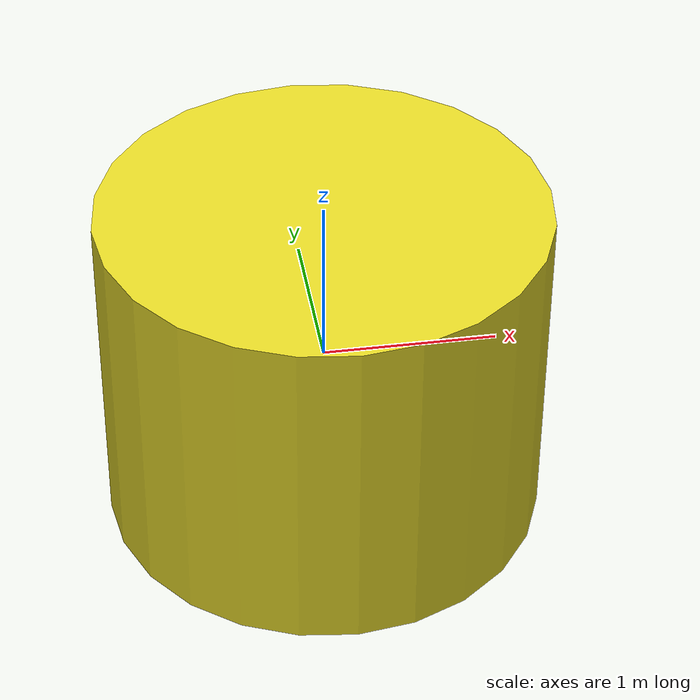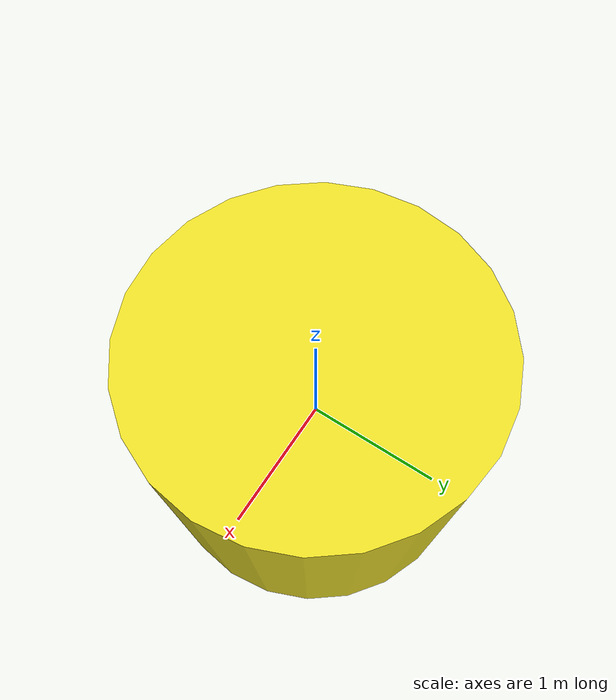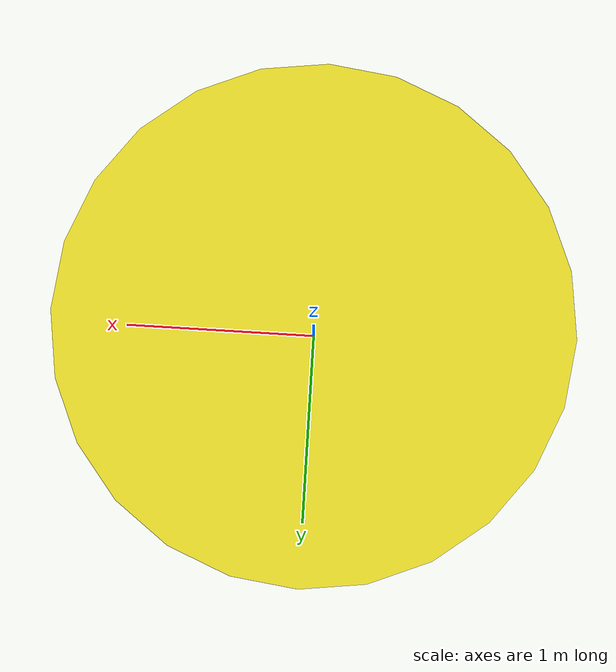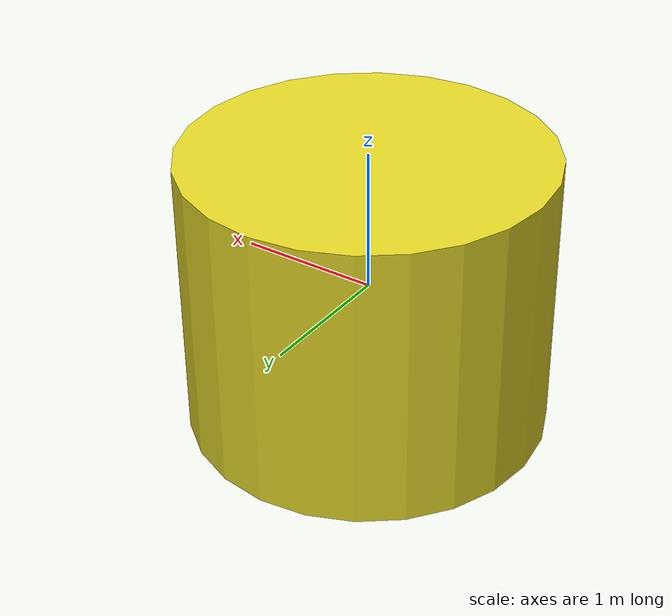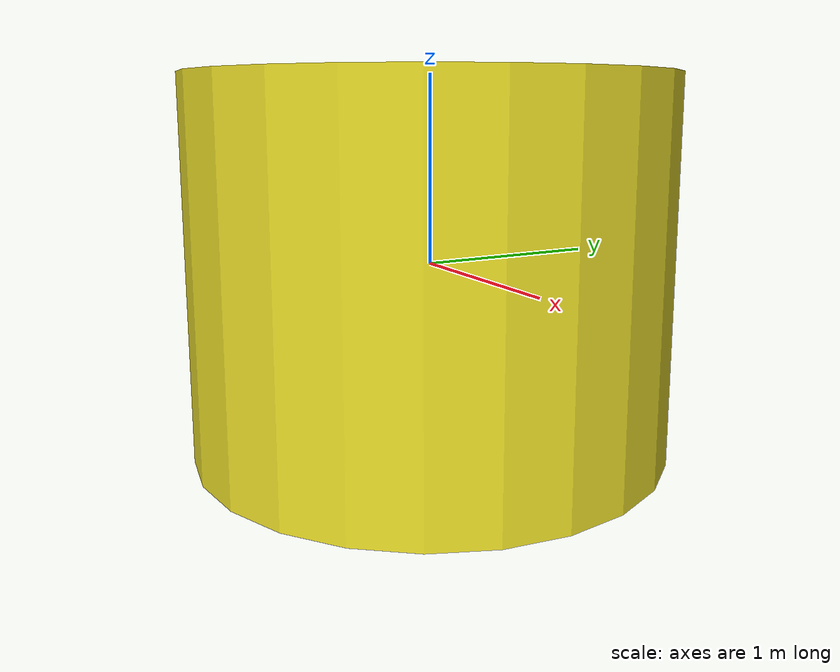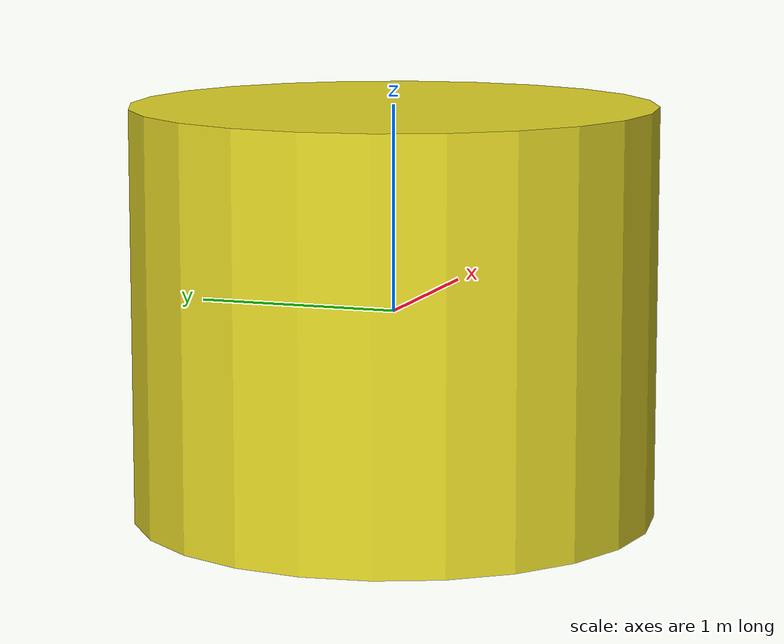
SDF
<?xml version='1.0'?>
<sdf version='1.6'>
  <model name='obs_cylinder'>
    <link name='link'>
      <inertial>
        <mass>100</mass>
        <pose frame=''>0 0 0 0 -0 0</pose>
      </inertial>
      <self_collide>0</self_collide>
      <enable_wind>0</enable_wind>
      <kinematic>0</kinematic>
      <pose frame=''>0 0 0 0 -0 0</pose>
      <gravity>1</gravity>
      <visual name='visual'>
        <geometry>
          <cylinder>
            <radius>1.27</radius>
            <length>2</length>
          </cylinder>
        </geometry>
        <material>
          <script>
            <name>Gazebo/Yellow</name>
            <uri>file://media/materials/scripts/gazebo.material</uri>
          </script>
          <shader type='pixel'/>
        </material>
        <pose frame=''>0 0 0 0 -0 0</pose>
        <transparency>0</transparency>
        <cast_shadows>1</cast_shadows>
      </visual>
      <collision name='collision'>
        <laser_retro>0</laser_retro>
        <max_contacts>10</max_contacts>
        <pose frame=''>0 0 0 0 -0 0</pose>
        <geometry>
          <cylinder>
            <radius>1.27</radius>
            <length>2</length>
          </cylinder>
        </geometry>
      </collision>
    </link>
    <static>0</static>
    <allow_auto_disable>1</allow_auto_disable>
  </model>
</sdf>
